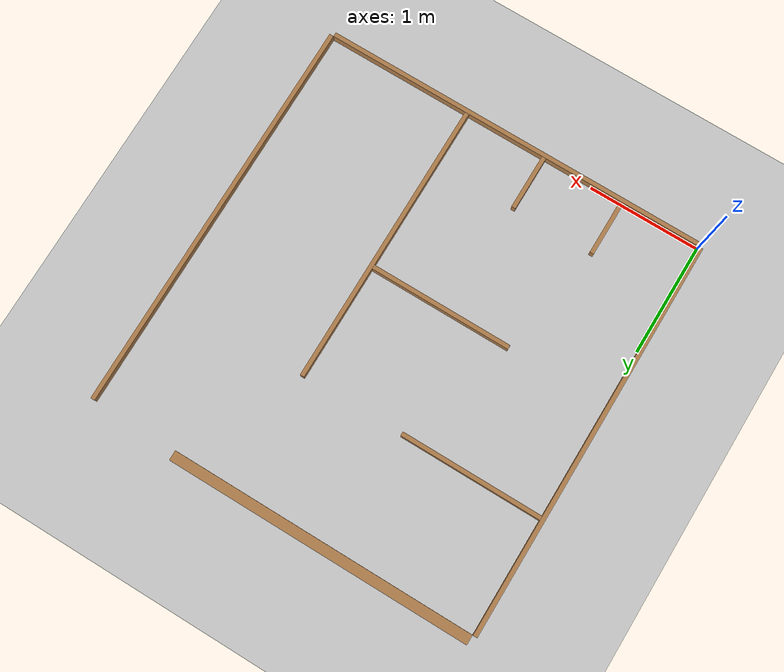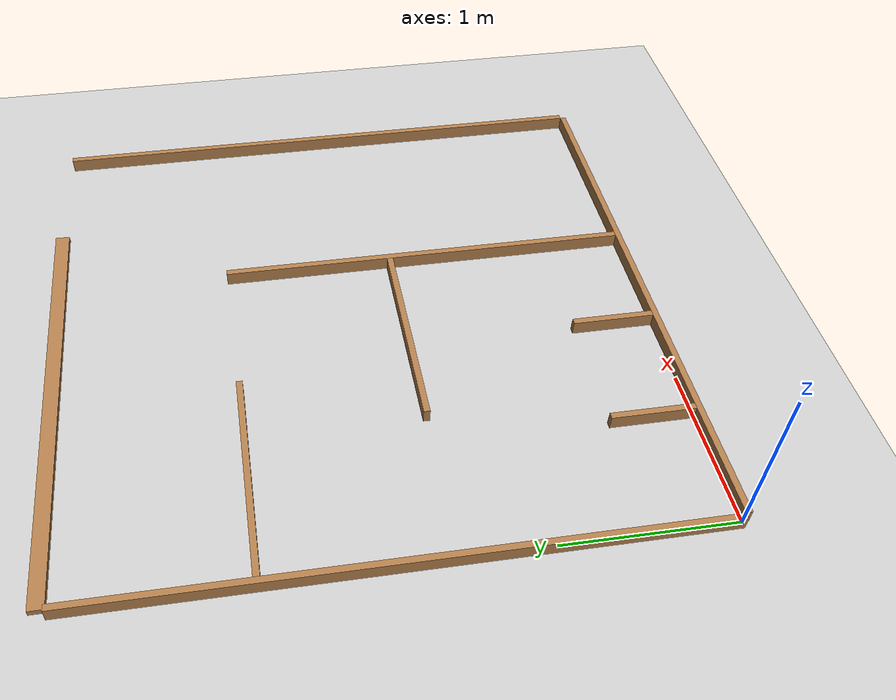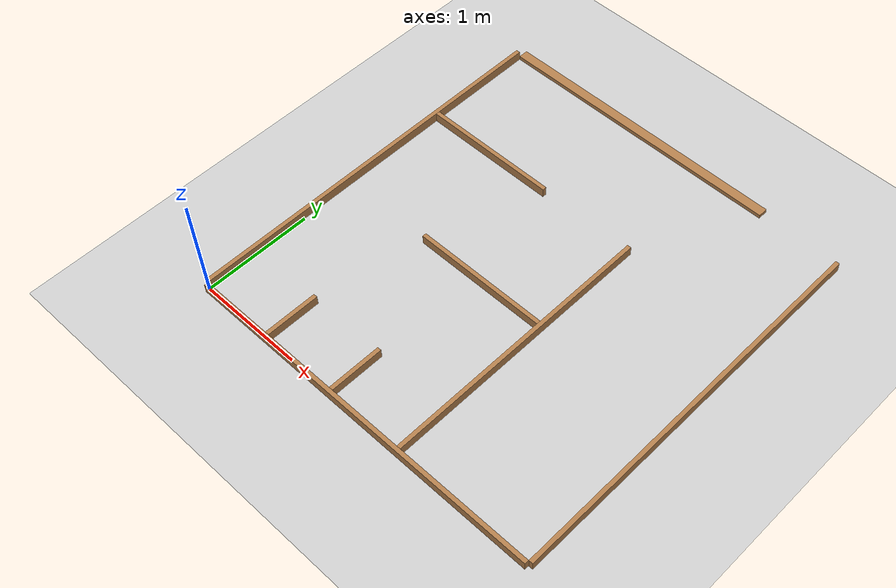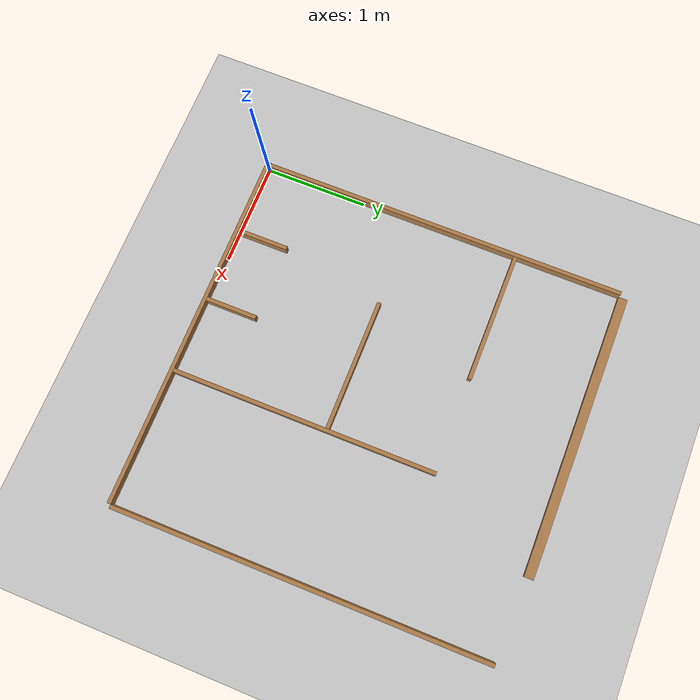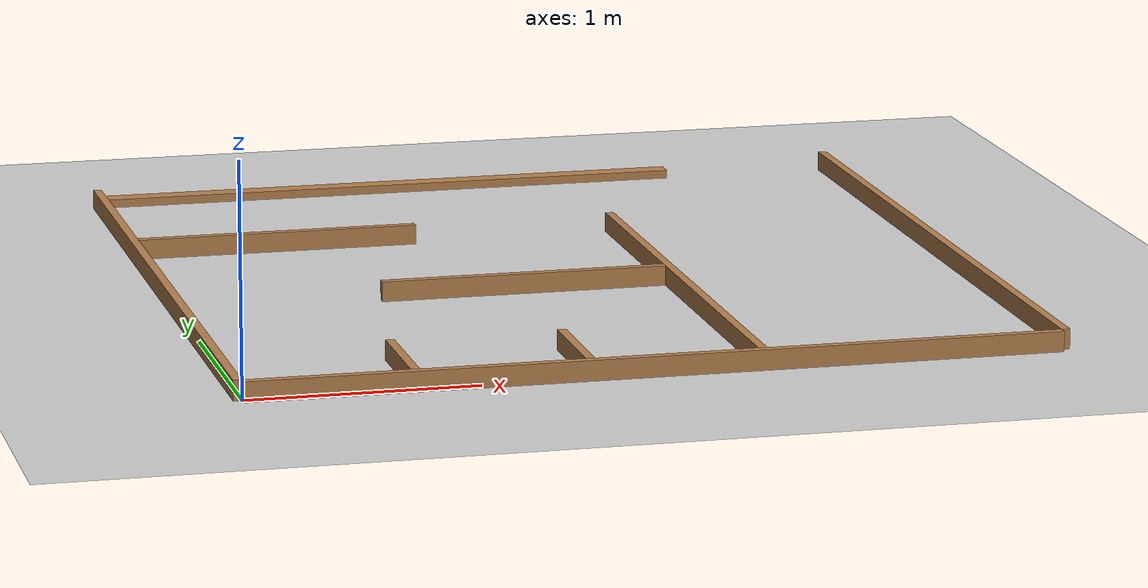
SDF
<?xml version="1.0"?>
<sdf version="1.6">
  <world name="default">
    <gravity>0 0 -9.8</gravity>

    <include>
      <uri>model://ground_plane</uri>
    </include>

    <include>
      <uri>model://sun</uri>
    </include>

    <scene>
      <shadows>false</shadows>
    </scene>

    <include>
      <name>frame0</name>
      <uri>model://natsu24_frame0</uri>
      <pose>1.75 -0.019 0.0445 0 0 0 0 0</pose>
    </include>

    <include>
      <name>frame1</name>
      <uri>model://natsu24_frame1</uri>
      <pose>-0.019 1.8 0.0445 0 0 0 0 0</pose>
    </include>

    <include>
      <name>frame2</name>
      <uri>model://natsu24_frame1</uri>
      <pose>3.519 1.8 0.0445 0 0 0 0 0</pose>
    </include>

    <include>
      <name>frame3</name>
      <uri>model://natsu24_frame2</uri>
      <pose>2.195 1.288 0.0445 0 0 0 0 0</pose>
    </include>

    <include>
      <name>frame4</name>
      <uri>model://natsu24_frame3</uri>
      <pose>0.719 0.25 0.0445 0 0 0 0 0</pose>
    </include>

    <include>
      <name>frame5</name>
      <uri>model://natsu24_frame3</uri>
      <pose>1.457 0.25 0.0445 0 0 0 0 0</pose>
    </include>

    <include>
      <name>frame6</name>
      <uri>model://natsu24_frame4</uri>
      <pose>1.538 1.519 0.0445 0 0 0 0 0</pose>
    </include>

    <include>
      <name>frame7</name>
      <uri>model://natsu24_frame4</uri>
      <pose>0.638 2.557 0.0445 0 0 0 0 0</pose>
    </include>

    <include>
      <name>frame8</name>
      <uri>model://natsu24_frame5</uri>
      <pose>1.3715 3.6445 0.019 0 0 0 0 0</pose>
    </include>
  </world>
</sdf>

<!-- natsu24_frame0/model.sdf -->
<sdf version="1.6">
    <model name="frame">
        <static>true</static>
        <pose>0 0 0 0 0 0</pose>
        <link name="link">
            <collision name="collision">
                <geometry>
                    <box>
                        <size>3.5 0.038 0.089</size>
                    </box>
                </geometry>
            </collision>
            <visual name="visual">
                <geometry>
                    <box>
                        <size>3.5 0.038 0.089</size>
                    </box>
                </geometry>
                <material>
                    <script>
                        <uri>file://media/materials/scripts/gazebo.material</uri>
                        <name>Gazebo/Wood</name>
                    </script>
                </material>
            </visual>
        </link>
    </model>
</sdf>

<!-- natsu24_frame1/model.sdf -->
<sdf version="1.6">
    <model name="frame">
        <static>true</static>
        <pose>0 0 0 0 0 0</pose>
        <link name="link">
            <collision name="collision">
                <geometry>
                    <box>
                        <size>0.038 3.6 0.089</size>
                    </box>
                </geometry>
            </collision>
            <visual name="visual">
                <geometry>
                    <box>
                        <size>0.038 3.6 0.089</size>
                    </box>
                </geometry>
                <material>
                    <script>
                        <uri>file://media/materials/scripts/gazebo.material</uri>
                        <name>Gazebo/Wood</name>
                    </script>
                </material>
            </visual>
        </link>
    </model>
</sdf>

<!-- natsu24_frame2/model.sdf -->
<sdf version="1.6">
    <model name="frame">
        <static>true</static>
        <pose>0 0 0 0 0 0</pose>
        <link name="link">
            <collision name="collision">
                <geometry>
                    <box>
                        <size>0.038 2.576 0.089</size>
                    </box>
                </geometry>
            </collision>
            <visual name="visual">
                <geometry>
                    <box>
                        <size>0.038 2.576 0.089</size>
                    </box>
                </geometry>
                <material>
                    <script>
                        <uri>file://media/materials/scripts/gazebo.material</uri>
                        <name>Gazebo/Wood</name>
                    </script>
                </material>
            </visual>
        </link>
    </model>
</sdf>

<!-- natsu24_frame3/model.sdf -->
<sdf version="1.6">
    <model name="frame">
        <static>true</static>
        <pose>0 0 0 0 0 0</pose>
        <link name="link">
            <collision name="collision">
                <geometry>
                    <box>
                        <size>0.038 0.5 0.089</size>
                    </box>
                </geometry>
            </collision>
            <visual name="visual">
                <geometry>
                    <box>
                        <size>0.038 0.5 0.089</size>
                    </box>
                </geometry>
                <material>
                    <script>
                        <uri>file://media/materials/scripts/gazebo.material</uri>
                        <name>Gazebo/Wood</name>
                    </script>
                </material>
            </visual>
        </link>
    </model>
</sdf>

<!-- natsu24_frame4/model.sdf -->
<sdf version="1.6">
    <model name="frame">
        <static>true</static>
        <pose>0 0 0 0 0 0</pose>
        <link name="link">
            <collision name="collision">
                <geometry>
                    <box>
                        <size>1.276 0.038 0.089</size>
                    </box>
                </geometry>
            </collision>
            <visual name="visual">
                <geometry>
                    <box>
                        <size>1.276 0.038 0.089</size>
                    </box>
                </geometry>
                <material>
                    <script>
                        <uri>file://media/materials/scripts/gazebo.material</uri>
                        <name>Gazebo/Wood</name>
                    </script>
                </material>
            </visual>
        </link>
    </model>
</sdf>

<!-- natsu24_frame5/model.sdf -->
<sdf version="1.6">
    <model name="frame">
        <static>true</static>
        <pose>0 0 0 0 0 0</pose>
        <link name="link">
            <collision name="collision">
                <geometry>
                    <box>
                        <size>2.743 0.089 0.038</size>
                    </box>
                </geometry>
            </collision>
            <visual name="visual">
                <geometry>
                    <box>
                        <size>2.743 0.089 0.038</size>
                    </box>
                </geometry>
                <material>
                    <script>
                        <uri>file://media/materials/scripts/gazebo.material</uri>
                        <name>Gazebo/Wood</name>
                    </script>
                </material>
            </visual>
        </link>
    </model>
</sdf>
